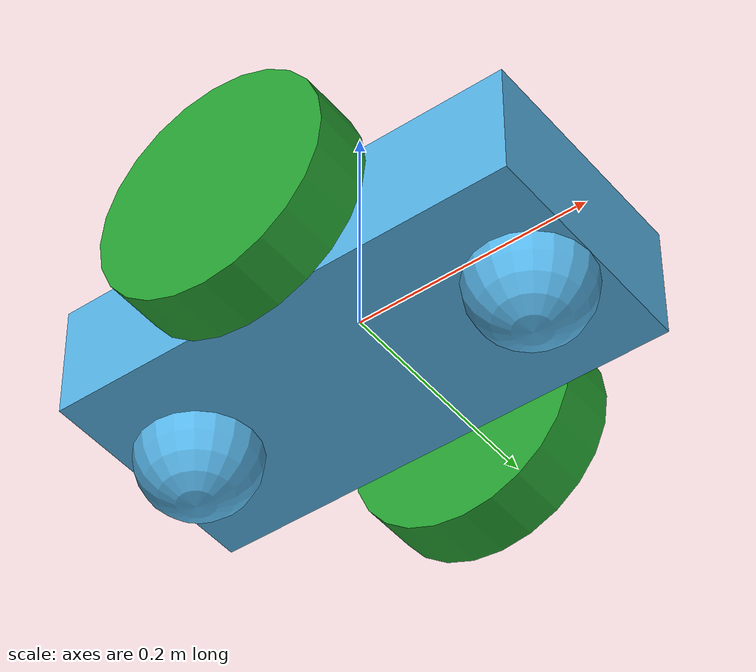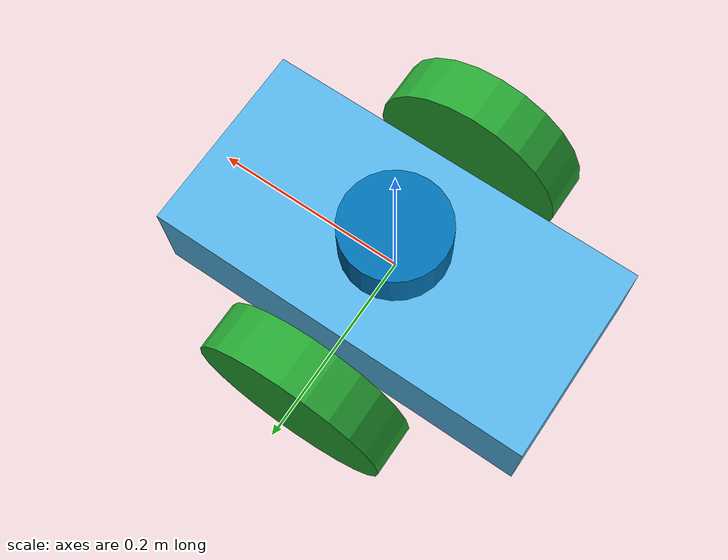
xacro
<?xml version='1.0'?>

<robot name="gmc_simulation_diff_drive" xmlns:xacro="http://www.ros.org/wiki/xacro">
  <xacro:arg name="gpu" default="false"/>
  <xacro:property name="gpu" value="$(arg gpu)" />
  <xacro:include filename="$(find gmc_simulation_diff_drive)/urdf/gmc_simulation_diff_drive.gazebo" />

  <gazebo reference="left_wheel">
    <material>Gazebo/Green</material>
  </gazebo>

  <gazebo reference="right_wheel">
    <material>Gazebo/Green</material>
  </gazebo>

  <link name="robot_footprint"></link>

  <joint name="robot_footprint_joint" type="fixed">
    <origin xyz="0 0 0" rpy="0 0 0" />
    <parent link="robot_footprint"/>
    <child link="base_link" />
  </joint>

  <link name='base_link'>

    <inertial>
      <mass value="15.0"/>
      <origin xyz="0.0 0 0" rpy=" 0 0 0"/>
      <inertia
          ixx="0.1" ixy="0" ixz="0"
          iyy="0.1" iyz="0"
          izz="0.1"
      />
    </inertial>

    <collision name='collision'>
      <origin xyz="0 0 0" rpy=" 0 0 0"/>
      <geometry>
        <box size=".4 .2 .1"/>
      </geometry>
    </collision>

    <visual name='chassis_visual'>
      <origin xyz="0 0 0" rpy=" 0 0 0"/>
      <geometry>
        <box size=".4 .2 .1"/>
      </geometry>
    </visual>

    <collision name='back_caster_collision'>
      <origin xyz="-0.15 0 -0.05" rpy=" 0 0 0"/>
      <geometry>
        <sphere radius="0.0499"/>
      </geometry>
    </collision>

    <visual name='back_caster_visual'>
      <origin xyz="-0.15 0 -0.05" rpy=" 0 0 0"/>
      <geometry>
        <sphere radius="0.05"/>
      </geometry>
    </visual>

    <collision name='front_caster_collision'>
      <origin xyz="0.15 0 -0.05" rpy=" 0 0 0"/>
      <geometry>
        <sphere radius="0.0499"/>
      </geometry>
    </collision>

    <visual name='front_caster_visual'>
      <origin xyz="0.15 0 -0.05" rpy=" 0 0 0"/>
      <geometry>
        <sphere radius="0.05"/>
      </geometry>
    </visual>

  </link>

  <!-- Left wheel link -->
  <link name='left_wheel'>
    <inertial>
      <mass value="5.0"/>
      <origin xyz="0.0 0 0" rpy=" 0 0 0"/>
      <inertia
          ixx="0.1" ixy="0" ixz="0"
          iyy="0.1" iyz="0"
          izz="0.1"
      />
    </inertial>

    <collision name='left_wheel_collision'>
      <origin xyz="0 0 0" rpy=" 0 1.5707 1.5707"/>
      <geometry>
        <cylinder radius="0.1" length="0.05"/>
      </geometry>
    </collision>

    <visual name='left_wheel_visual'>
      <origin xyz="0 0 0" rpy=" 0 1.5707 1.5707"/>
      <geometry>
        <cylinder radius="0.1" length="0.05"/>
      </geometry>
    </visual>
  </link>

  <!-- Left wheel joint -->
  <joint name="left_wheel_hinge" type="continuous">
    <origin xyz="0 0.15 0" rpy="0 0 0"/>
    <child link="left_wheel"/>
    <parent link="base_link"/>
    <axis xyz="0 1 0" rpy="0 0 0"/>
    <limit effort="10000" velocity="1000"/>
    <dynamics damping="1.0" friction="1.0"/>
  </joint>

  <!-- Right wheel -->
  <link name='right_wheel'>
    <inertial>
      <mass value="5.0"/>
      <origin xyz="0.0 0 0" rpy=" 0 0 0"/>
      <inertia
          ixx="0.1" ixy="0" ixz="0"
          iyy="0.1" iyz="0"
          izz="0.1"
      />
    </inertial>

    <collision name='right_wheel_collision'>
      <origin xyz="0 0 0" rpy=" 0 1.5707 1.5707"/>
      <geometry>
        <cylinder radius="0.1" length="0.05"/>
      </geometry>
    </collision>

    <visual name='right_wheel_visual'>
      <origin xyz="0 0 0" rpy=" 0 1.5707 1.5707"/>
      <geometry>
        <cylinder radius="0.1" length="0.05"/>
      </geometry>
    </visual>
  </link>

  <!-- Right wheel joint -->
  <joint name="right_wheel_hinge" type="continuous">
    <origin xyz="0 -0.15 0" rpy="0 0 0"/>
    <child link="right_wheel"/>
    <parent link="base_link"/>
    <axis xyz="0 1 0" rpy="0 0 0"/>
    <limit effort="10000" velocity="1000"/>
    <dynamics damping="1.0" friction="1.0"/>
  </joint>

  <xacro:include filename="$(find robosense_description)/urdf/RS-16.urdf.xacro"/>
  <xacro:RS-16 parent="base_link" name="robosense" topic="/rs_points" hz="20" samples="900" gpu="${gpu}">
    <origin xyz="0 0 0.06" rpy="0 0 0" />
  </xacro:RS-16>

</robot>

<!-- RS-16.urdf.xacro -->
<robot xmlns:xacro="http://www.ros.org/wiki/xacro" name="RS-16">
  <xacro:property name="M_PI" value="3.1415926535897931" />
  <xacro:macro name="RS-16" params="*origin parent:=base_link name:=robosense topic:=/robosense_points hz:=20 lasers:=16 samples:=360 collision_range:=0.4 min_range:=0.4 max_range:=150.0 noise:=0.008 min_angle:=-${M_PI} max_angle:=${M_PI} gpu:=false">

    <joint name="${name}_base_mount_joint" type="fixed">
      <xacro:insert_block name="origin" />
      <parent link="${parent}"/>
      <child link="${name}_base_link"/>
    </joint>

    <link name="${name}_base_link">
      <inertial>
        <mass value="0.87"/>
        <origin xyz="0 0 0"/>
        <inertia ixx="0.001094695" ixy="0" ixz="0"
          iyy="0.001094695" iyz="0"
          izz="0.001245079"/>
      </inertial>
      <visual>
        <origin rpy="0 0 0" xyz="0 0 0"/>
        <geometry>
          <cylinder radius="0.0535" length="0.0817"/>
        </geometry>
      </visual>
      <collision>
        <origin rpy="0 0 0" xyz="0 0 0"/>
        <geometry>
          <cylinder radius="0.0535" length="0.0817"/>
        </geometry>
      </collision>
    </link>

    <joint name="${name}_base_scan_joint" type="fixed" >
      <origin xyz="0 0 0.039" rpy="0 0 0" />
      <parent link="${name}_base_link" />
      <child link="${name}"/>
    </joint>

    <link name="${name}">
      <inertial>
        <mass value="0.01"/>
        <origin xyz="0 0 0"/>
        <inertia ixx="1e-7" ixy="0" ixz="0" iyy="1e-7" iyz="0" izz="1e-7"/>
      </inertial>
    </link>

    <!-- Gazebo requires the robosense_gazebo_plugins package -->
    <gazebo reference="${name}">
      <xacro:if value="${gpu}">
        <sensor type="gpu_ray" name="${name}-RS16">
          <pose>0 0 0 0 0 0</pose>
          <visualize>false</visualize>
          <update_rate>${hz}</update_rate>
          <ray>
            <scan>
              <horizontal>
                <samples>${samples}</samples>
                <resolution>1</resolution>
                <min_angle>${min_angle}</min_angle>
                <max_angle>${max_angle}</max_angle>
              </horizontal>
              <vertical>
                <samples>${lasers}</samples>
                <resolution>1</resolution>
                <min_angle>-${15.0*M_PI/180.0}</min_angle>
                <max_angle> ${15.0*M_PI/180.0}</max_angle>
              </vertical>
            </scan>
            <range>
              <min>${collision_range}</min>
              <max>${max_range}</max>
              <resolution>0.001</resolution>
            </range>
            <noise>
              <type>gaussian</type>
              <mean>0.0</mean>
              <stddev>0.0</stddev>
            </noise>
          </ray>
          <plugin name="gazebo_ros_laser_controller" filename="libgazebo_ros_robosense_laser.so">
            <ros>
              <namespace>/${name}</namespace>
              <remapping>~/out:=${topic}</remapping>
            </ros>
            <tf_prefix>${tf_prefix}</tf_prefix>
            <frameName>${name}</frameName>
            <min_range>${min_range}</min_range>
            <max_range>${max_range}</max_range>
            <gaussian_noise>${noise}</gaussian_noise>
          </plugin>
        </sensor>
      </xacro:if>
      <xacro:unless value="${gpu}">
        <sensor type="ray" name="${name}-RS16">
          <pose>0 0 0 0 0 0</pose>
          <always_on>true</always_on>
          <visualize>false</visualize>
          <update_rate>${hz}</update_rate>
          <ray>
            <scan>
              <horizontal>
                <samples>${samples}</samples>
                <resolution>1</resolution>
                <min_angle>${min_angle}</min_angle>
                <max_angle>${max_angle}</max_angle>
              </horizontal>
              <vertical>
                <samples>${lasers}</samples>
                <resolution>1</resolution>
                <min_angle>-${15.0*M_PI/180.0}</min_angle>
                <max_angle> ${15.0*M_PI/180.0}</max_angle>
              </vertical>
            </scan>
            <range>
              <min>${collision_range}</min>
              <max>${max_range+1}</max>
              <resolution>0.001</resolution>
            </range>
            <noise>
              <type>gaussian</type>
              <mean>0.0</mean>
              <stddev>0.0</stddev>
            </noise>
          </ray>
          <plugin name="gazebo_ros_laser_controller" filename="libgazebo_ros_robosense_laser.so">
            <ros>
              <namespace>/${name}</namespace>
              <remapping>~/out:=${topic}</remapping>
            </ros>
            <frameName>${name}</frameName>
            <min_range>${min_range}</min_range>
            <max_range>${max_range}</max_range>
            <gaussian_noise>${noise}</gaussian_noise>
          </plugin>
        </sensor>
      </xacro:unless>
    </gazebo>

  </xacro:macro>
</robot>
